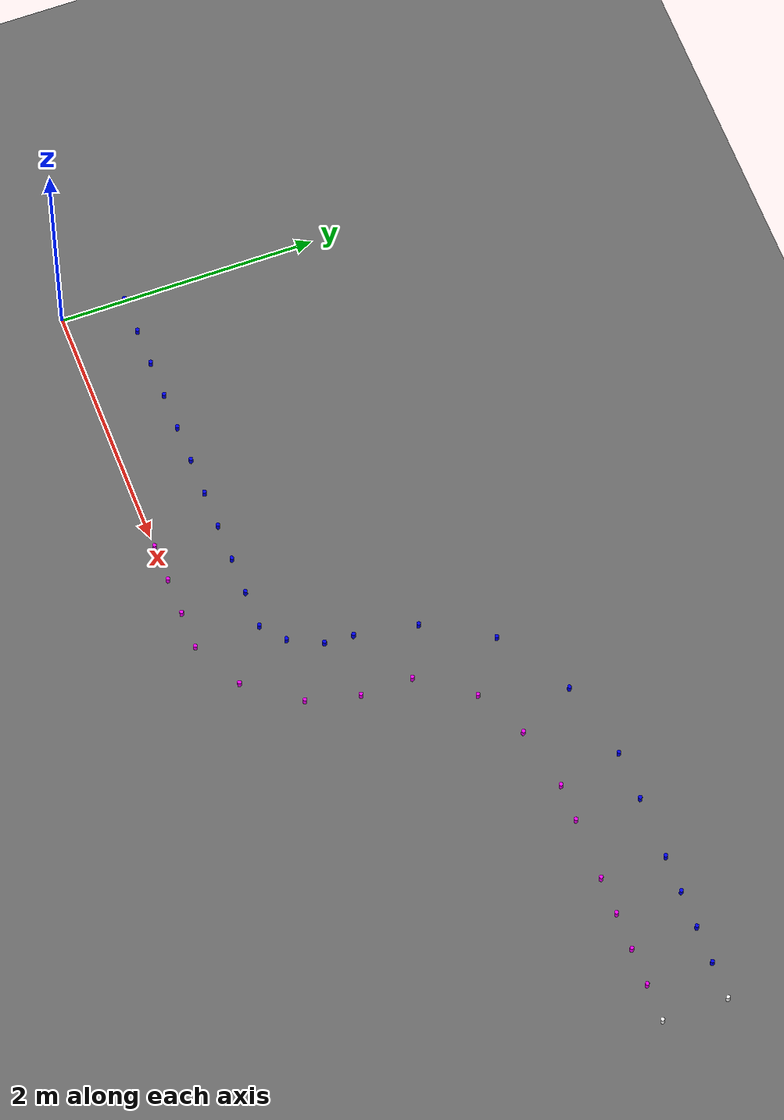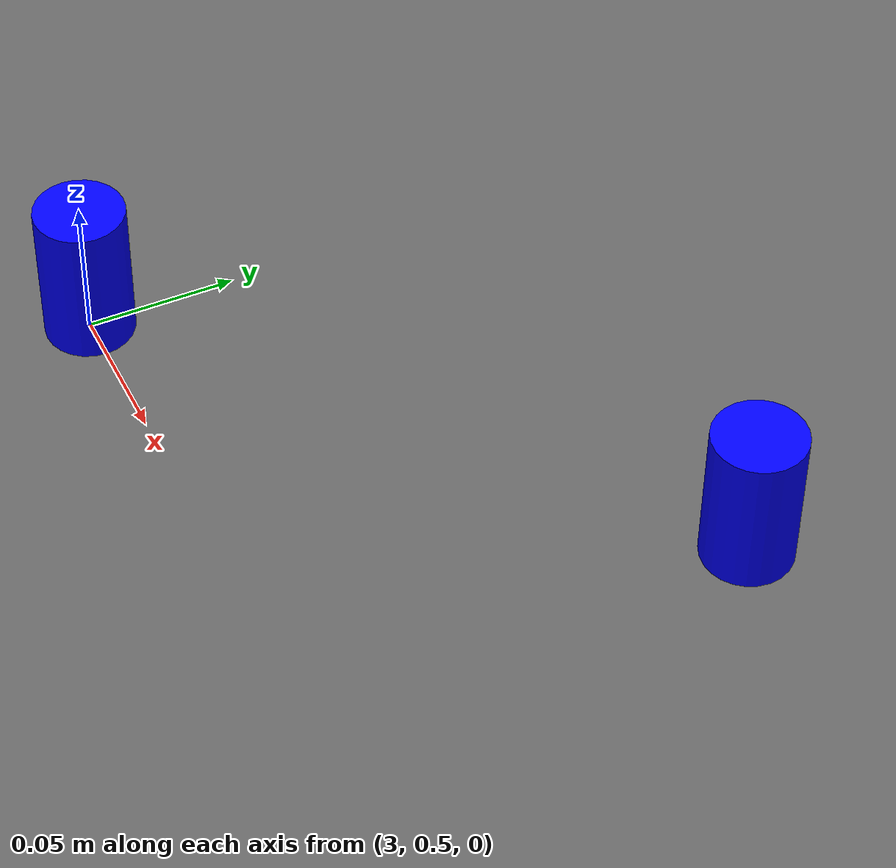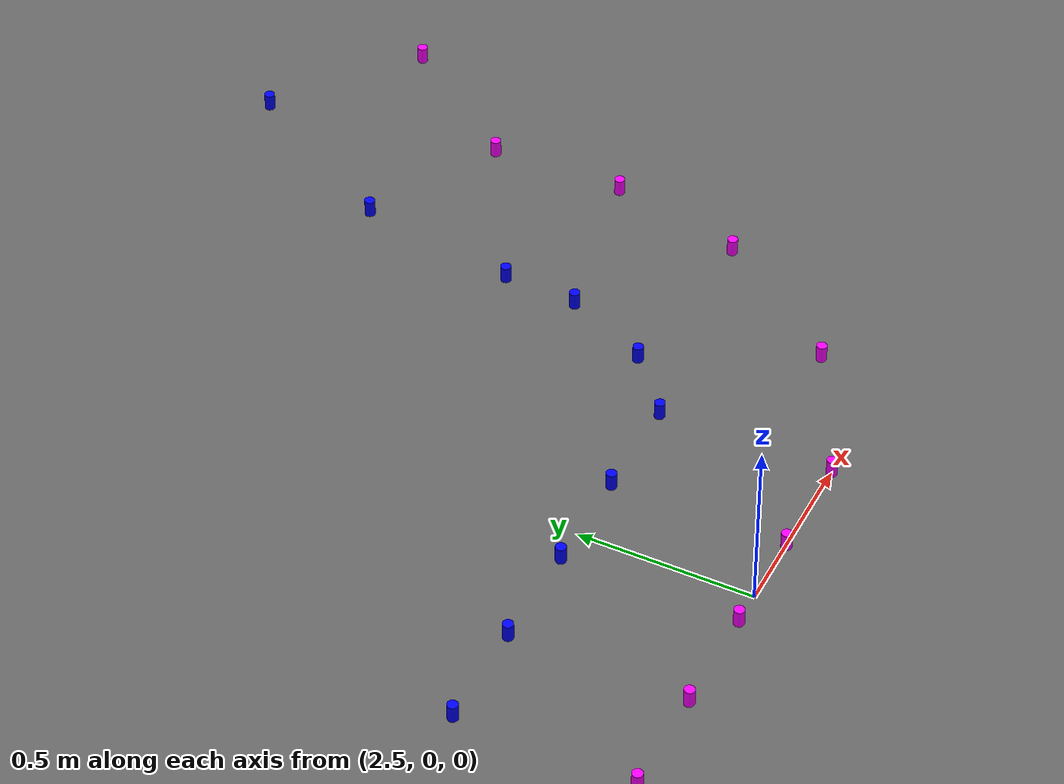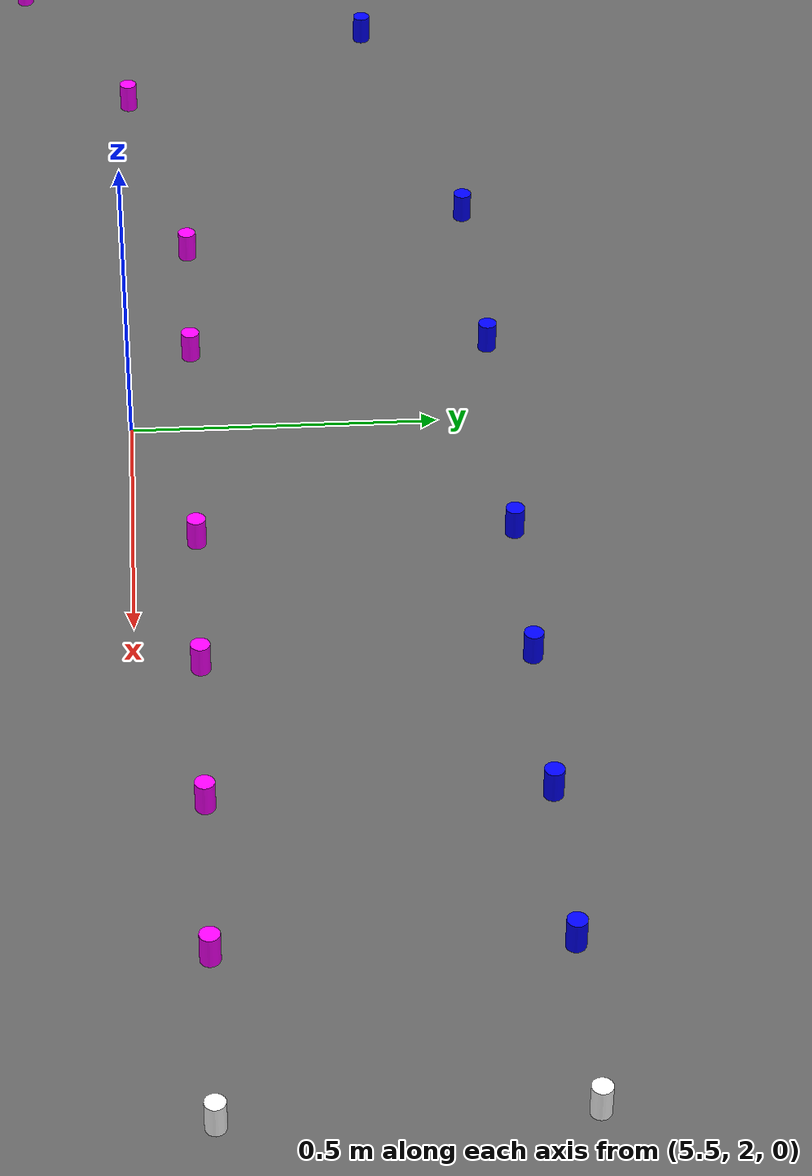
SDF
<sdf version='1.10'>
  <world name='empty'>
    <physics type='ode'>
      <max_step_size>0.0068</max_step_size>
      <real_time_factor>1.0</real_time_factor>
      <real_time_update_rate>10</real_time_update_rate>
    </physics>
    <plugin name='gz::sim::systems::Physics' filename='gz-sim-physics-system'/>
    <plugin name='gz::sim::systems::UserCommands' filename='gz-sim-user-commands-system'/>
    <plugin name='gz::sim::systems::SceneBroadcaster' filename='gz-sim-scene-broadcaster-system'/>
    <plugin name='gz::sim::systems::Contact' filename='gz-sim-contact-system'/>
    <gravity>0 0 -9.8000000000000007</gravity>
    <magnetic_field>5.5644999999999998e-06 2.2875799999999999e-05 -4.2388400000000002e-05</magnetic_field>
    <atmosphere type='adiabatic'/>
    <scene>
      <ambient>0.400000006 0.400000006 0.400000006 1</ambient>
      <background>0 0 0 1</background>
      <shadows>true</shadows>
        <fog>
          <type>linear</type>
          <color>0 0 0 1</color>
          <density>0.001</density>
          <start>10.0</start>
          <end>100.0</end>
        </fog>

    </scene>
    <model name='ground_plane'>
      <static>true</static>
      <link name='link'>
        <collision name='collision'>
          <geometry>
            <plane>
              <normal>0 0 1</normal>
              <size>100 100</size>
            </plane>
          </geometry>
          <surface>
            <friction>
              <ode>
                <mu>0.6</mu>  <!-- Static friction (resistance to starting motion) -->
                <mu2>0.6</mu2> <!-- Dynamic friction (resistance while sliding) -->
              </ode>
            </friction>
            <bounce/>
            <contact/>
          </surface>
        </collision>
        <visual name='visual'>
          <geometry>
            <plane>
              <normal>0 0 1</normal>
              <size>100 100</size>
            </plane>
          </geometry>
          <material>
            <ambient>0.4 0.40 0.0 1</ambient>
            <diffuse>0.4
             0.4 0.4   1</diffuse>
            <specular>1.20000001e-08 1.20000001e-08 1.20000001e-08 1</specular>
          </material>
        </visual>
        <pose>0 0 0 0 0 0</pose>
        <inertial>
          <pose>0 0 0 0 0 0</pose>
          <mass>1</mass>
          <inertia>
            <ixx>1</ixx>
            <ixy>0</ixy>
            <ixz>0</ixz>
            <iyy>1</iyy>
            <iyz>0</iyz>
            <izz>1</izz>
          </inertia>
        </inertial>
        <enable_wind>false</enable_wind>
      </link>
      <pose>0 0 0 0 0 0</pose>
      <self_collide>false</self_collide>
    </model>

        <model name="right_cone_0">
          <link name="link">
            <pose>0.0 0.5 0.025 0 0 0</pose>
            <collision name="collision">
              <geometry>
                <cylinder>
                  <radius>0.015</radius>
                  <length>0.05</length>
                </cylinder>
              </geometry>
            </collision>
            <visual name="visual">
              <geometry>
                <cylinder>
                  <radius>0.015</radius>
                  <length>0.05</length>
                </cylinder>
              </geometry>
              <material>
                <ambient>0 0 1 1</ambient>
                <diffuse>0 0 1 1</diffuse>
              </material>
            </visual>
          </link>
        </model>

        <model name="right_cone_1">
          <link name="link">
            <pose>0.3 0.5 0.025 0 0 0</pose>
            <collision name="collision">
              <geometry>
                <cylinder>
                  <radius>0.015</radius>
                  <length>0.05</length>
                </cylinder>
              </geometry>
            </collision>
            <visual name="visual">
              <geometry>
                <cylinder>
                  <radius>0.015</radius>
                  <length>0.05</length>
                </cylinder>
              </geometry>
              <material>
                <ambient>0 0 1 1</ambient>
                <diffuse>0 0 1 1</diffuse>
              </material>
            </visual>
          </link>
        </model>

        <model name="right_cone_2">
          <link name="link">
            <pose>0.6 0.5 0.025 0 0 0</pose>
            <collision name="collision">
              <geometry>
                <cylinder>
                  <radius>0.015</radius>
                  <length>0.05</length>
                </cylinder>
              </geometry>
            </collision>
            <visual name="visual">
              <geometry>
                <cylinder>
                  <radius>0.015</radius>
                  <length>0.05</length>
                </cylinder>
              </geometry>
              <material>
                <ambient>0 0 1 1</ambient>
                <diffuse>0 0 1 1</diffuse>
              </material>
            </visual>
          </link>
        </model>

        <model name="right_cone_3">
          <link name="link">
            <pose>0.8999999999999999 0.5 0.025 0 0 0</pose>
            <collision name="collision">
              <geometry>
                <cylinder>
                  <radius>0.015</radius>
                  <length>0.05</length>
                </cylinder>
              </geometry>
            </collision>
            <visual name="visual">
              <geometry>
                <cylinder>
                  <radius>0.015</radius>
                  <length>0.05</length>
                </cylinder>
              </geometry>
              <material>
                <ambient>0 0 1 1</ambient>
                <diffuse>0 0 1 1</diffuse>
              </material>
            </visual>
          </link>
        </model>

        <model name="right_cone_4">
          <link name="link">
            <pose>1.2 0.5 0.025 0 0 0</pose>
            <collision name="collision">
              <geometry>
                <cylinder>
                  <radius>0.015</radius>
                  <length>0.05</length>
                </cylinder>
              </geometry>
            </collision>
            <visual name="visual">
              <geometry>
                <cylinder>
                  <radius>0.015</radius>
                  <length>0.05</length>
                </cylinder>
              </geometry>
              <material>
                <ambient>0 0 1 1</ambient>
                <diffuse>0 0 1 1</diffuse>
              </material>
            </visual>
          </link>
        </model>

        <model name="right_cone_5">
          <link name="link">
            <pose>1.5 0.5 0.025 0 0 0</pose>
            <collision name="collision">
              <geometry>
                <cylinder>
                  <radius>0.015</radius>
                  <length>0.05</length>
                </cylinder>
              </geometry>
            </collision>
            <visual name="visual">
              <geometry>
                <cylinder>
                  <radius>0.015</radius>
                  <length>0.05</length>
                </cylinder>
              </geometry>
              <material>
                <ambient>0 0 1 1</ambient>
                <diffuse>0 0 1 1</diffuse>
              </material>
            </visual>
          </link>
        </model>

        <model name="right_cone_6">
          <link name="link">
            <pose>1.8 0.5 0.025 0 0 0</pose>
            <collision name="collision">
              <geometry>
                <cylinder>
                  <radius>0.015</radius>
                  <length>0.05</length>
                </cylinder>
              </geometry>
            </collision>
            <visual name="visual">
              <geometry>
                <cylinder>
                  <radius>0.015</radius>
                  <length>0.05</length>
                </cylinder>
              </geometry>
              <material>
                <ambient>0 0 1 1</ambient>
                <diffuse>0 0 1 1</diffuse>
              </material>
            </visual>
          </link>
        </model>

        <model name="right_cone_7">
          <link name="link">
            <pose>2.1 0.5 0.025 0 0 0</pose>
            <collision name="collision">
              <geometry>
                <cylinder>
                  <radius>0.015</radius>
                  <length>0.05</length>
                </cylinder>
              </geometry>
            </collision>
            <visual name="visual">
              <geometry>
                <cylinder>
                  <radius>0.015</radius>
                  <length>0.05</length>
                </cylinder>
              </geometry>
              <material>
                <ambient>0 0 1 1</ambient>
                <diffuse>0 0 1 1</diffuse>
              </material>
            </visual>
          </link>
        </model>

        <model name="right_cone_8">
          <link name="link">
            <pose>2.4 0.5 0.025 0 0 0</pose>
            <collision name="collision">
              <geometry>
                <cylinder>
                  <radius>0.015</radius>
                  <length>0.05</length>
                </cylinder>
              </geometry>
            </collision>
            <visual name="visual">
              <geometry>
                <cylinder>
                  <radius>0.015</radius>
                  <length>0.05</length>
                </cylinder>
              </geometry>
              <material>
                <ambient>0 0 1 1</ambient>
                <diffuse>0 0 1 1</diffuse>
              </material>
            </visual>
          </link>
        </model>

        <model name="right_cone_9">
          <link name="link">
            <pose>2.6999999999999997 0.5 0.025 0 0 0</pose>
            <collision name="collision">
              <geometry>
                <cylinder>
                  <radius>0.015</radius>
                  <length>0.05</length>
                </cylinder>
              </geometry>
            </collision>
            <visual name="visual">
              <geometry>
                <cylinder>
                  <radius>0.015</radius>
                  <length>0.05</length>
                </cylinder>
              </geometry>
              <material>
                <ambient>0 0 1 1</ambient>
                <diffuse>0 0 1 1</diffuse>
              </material>
            </visual>
          </link>
        </model>

        <model name="right_cone_10">
          <link name="link">
            <pose>2.9999999999999996 0.5 0.025 0 0 0</pose>
            <collision name="collision">
              <geometry>
                <cylinder>
                  <radius>0.015</radius>
                  <length>0.05</length>
                </cylinder>
              </geometry>
            </collision>
            <visual name="visual">
              <geometry>
                <cylinder>
                  <radius>0.015</radius>
                  <length>0.05</length>
                </cylinder>
              </geometry>
              <material>
                <ambient>0 0 1 1</ambient>
                <diffuse>0 0 1 1</diffuse>
              </material>
            </visual>
          </link>
        </model>

        <model name="right_cone_11">
          <link name="link">
            <pose>3.176393202250021 0.647213595499958 0.025 0 0 0</pose>
            <collision name="collision">
              <geometry>
                <cylinder>
                  <radius>0.015</radius>
                  <length>0.05</length>
                </cylinder>
              </geometry>
            </collision>
            <visual name="visual">
              <geometry>
                <cylinder>
                  <radius>0.015</radius>
                  <length>0.05</length>
                </cylinder>
              </geometry>
              <material>
                <ambient>0 0 1 1</ambient>
                <diffuse>0 0 1 1</diffuse>
              </material>
            </visual>
          </link>
        </model>

        <model name="right_cone_12">
          <link name="link">
            <pose>3.3000000000000003 0.9000000000000001 0.025 0 0 0</pose>
            <collision name="collision">
              <geometry>
                <cylinder>
                  <radius>0.015</radius>
                  <length>0.05</length>
                </cylinder>
              </geometry>
            </collision>
            <visual name="visual">
              <geometry>
                <cylinder>
                  <radius>0.015</radius>
                  <length>0.05</length>
                </cylinder>
              </geometry>
              <material>
                <ambient>0 0 1 1</ambient>
                <diffuse>0 0 1 1</diffuse>
              </material>
            </visual>
          </link>
        </model>

        <model name="right_cone_13">
          <link name="link">
            <pose>3.3149287499273337 1.121267812518166 0.025 0 0 0</pose>
            <collision name="collision">
              <geometry>
                <cylinder>
                  <radius>0.015</radius>
                  <length>0.05</length>
                </cylinder>
              </geometry>
            </collision>
            <visual name="visual">
              <geometry>
                <cylinder>
                  <radius>0.015</radius>
                  <length>0.05</length>
                </cylinder>
              </geometry>
              <material>
                <ambient>0 0 1 1</ambient>
                <diffuse>0 0 1 1</diffuse>
              </material>
            </visual>
          </link>
        </model>

        <model name="right_cone_14">
          <link name="link">
            <pose>3.4 1.6 0.025 0 0 0</pose>
            <collision name="collision">
              <geometry>
                <cylinder>
                  <radius>0.015</radius>
                  <length>0.05</length>
                </cylinder>
              </geometry>
            </collision>
            <visual name="visual">
              <geometry>
                <cylinder>
                  <radius>0.015</radius>
                  <length>0.05</length>
                </cylinder>
              </geometry>
              <material>
                <ambient>0 0 1 1</ambient>
                <diffuse>0 0 1 1</diffuse>
              </material>
            </visual>
          </link>
        </model>

        <model name="right_cone_15">
          <link name="link">
            <pose>3.6999999999999993 2.0999999999999996 0.025 0 0 0</pose>
            <collision name="collision">
              <geometry>
                <cylinder>
                  <radius>0.015</radius>
                  <length>0.05</length>
                </cylinder>
              </geometry>
            </collision>
            <visual name="visual">
              <geometry>
                <cylinder>
                  <radius>0.015</radius>
                  <length>0.05</length>
                </cylinder>
              </geometry>
              <material>
                <ambient>0 0 1 1</ambient>
                <diffuse>0 0 1 1</diffuse>
              </material>
            </visual>
          </link>
        </model>

        <model name="right_cone_16">
          <link name="link">
            <pose>4.276393202250021 2.447213595499958 0.025 0 0 0</pose>
            <collision name="collision">
              <geometry>
                <cylinder>
                  <radius>0.015</radius>
                  <length>0.05</length>
                </cylinder>
              </geometry>
            </collision>
            <visual name="visual">
              <geometry>
                <cylinder>
                  <radius>0.015</radius>
                  <length>0.05</length>
                </cylinder>
              </geometry>
              <material>
                <ambient>0 0 1 1</ambient>
                <diffuse>0 0 1 1</diffuse>
              </material>
            </visual>
          </link>
        </model>

        <model name="right_cone_17">
          <link name="link">
            <pose>4.9019419324309075 2.59029033784546 0.025 0 0 0</pose>
            <collision name="collision">
              <geometry>
                <cylinder>
                  <radius>0.015</radius>
                  <length>0.05</length>
                </cylinder>
              </geometry>
            </collision>
            <visual name="visual">
              <geometry>
                <cylinder>
                  <radius>0.015</radius>
                  <length>0.05</length>
                </cylinder>
              </geometry>
              <material>
                <ambient>0 0 1 1</ambient>
                <diffuse>0 0 1 1</diffuse>
              </material>
            </visual>
          </link>
        </model>

        <model name="right_cone_18">
          <link name="link">
            <pose>5.3 2.6 0.025 0 0 0</pose>
            <collision name="collision">
              <geometry>
                <cylinder>
                  <radius>0.015</radius>
                  <length>0.05</length>
                </cylinder>
              </geometry>
            </collision>
            <visual name="visual">
              <geometry>
                <cylinder>
                  <radius>0.015</radius>
                  <length>0.05</length>
                </cylinder>
              </geometry>
              <material>
                <ambient>0 0 1 1</ambient>
                <diffuse>0 0 1 1</diffuse>
              </material>
            </visual>
          </link>
        </model>

        <model name="right_cone_19">
          <link name="link">
            <pose>5.8 2.6 0.025 0 0 0</pose>
            <collision name="collision">
              <geometry>
                <cylinder>
                  <radius>0.015</radius>
                  <length>0.05</length>
                </cylinder>
              </geometry>
            </collision>
            <visual name="visual">
              <geometry>
                <cylinder>
                  <radius>0.015</radius>
                  <length>0.05</length>
                </cylinder>
              </geometry>
              <material>
                <ambient>0 0 1 1</ambient>
                <diffuse>0 0 1 1</diffuse>
              </material>
            </visual>
          </link>
        </model>

        <model name="right_cone_20">
          <link name="link">
            <pose>6.1 2.6 0.025 0 0 0</pose>
            <collision name="collision">
              <geometry>
                <cylinder>
                  <radius>0.015</radius>
                  <length>0.05</length>
                </cylinder>
              </geometry>
            </collision>
            <visual name="visual">
              <geometry>
                <cylinder>
                  <radius>0.015</radius>
                  <length>0.05</length>
                </cylinder>
              </geometry>
              <material>
                <ambient>0 0 1 1</ambient>
                <diffuse>0 0 1 1</diffuse>
              </material>
            </visual>
          </link>
        </model>

        <model name="right_cone_21">
          <link name="link">
            <pose>6.4 2.6 0.025 0 0 0</pose>
            <collision name="collision">
              <geometry>
                <cylinder>
                  <radius>0.015</radius>
                  <length>0.05</length>
                </cylinder>
              </geometry>
            </collision>
            <visual name="visual">
              <geometry>
                <cylinder>
                  <radius>0.015</radius>
                  <length>0.05</length>
                </cylinder>
              </geometry>
              <material>
                <ambient>0 0 1 1</ambient>
                <diffuse>0 0 1 1</diffuse>
              </material>
            </visual>
          </link>
        </model>

        <model name="right_cone_22">
          <link name="link">
            <pose>6.7 2.6 0.025 0 0 0</pose>
            <collision name="collision">
              <geometry>
                <cylinder>
                  <radius>0.015</radius>
                  <length>0.05</length>
                </cylinder>
              </geometry>
            </collision>
            <visual name="visual">
              <geometry>
                <cylinder>
                  <radius>0.015</radius>
                  <length>0.05</length>
                </cylinder>
              </geometry>
              <material>
                <ambient>0 0 1 1</ambient>
                <diffuse>0 0 1 1</diffuse>
              </material>
            </visual>
          </link>
        </model>

        <model name="right_cone_23">
          <link name="link">
            <pose>7.0 2.6 0.025 0 0 0</pose>
            <collision name="collision">
              <geometry>
                <cylinder>
                  <radius>0.015</radius>
                  <length>0.05</length>
                </cylinder>
              </geometry>
            </collision>
            <visual name="visual">
              <geometry>
                <cylinder>
                  <radius>0.015</radius>
                  <length>0.05</length>
                </cylinder>
              </geometry>
              <material>
                <ambient>1 1 1 1</ambient>
                <diffuse>1 1 1 1</diffuse>
              </material>
            </visual>
          </link>
        </model>

        <model name="left_cone_0">
          <link name="link">
            <pose>0 0 0.025 0 0 0</pose>
            <collision name="collision">
              <geometry>
                <cylinder>
                  <radius>0.015</radius>
                  <length>0.05</length>
                </cylinder>
              </geometry>
            </collision>
            <visual name="visual">
              <geometry>
                <cylinder>
                  <radius>0.015</radius>
                  <length>0.05</length>
                </cylinder>
              </geometry>
              <material>
                <ambient>1 0 1 1</ambient>
                <diffuse>1 0 1 1</diffuse>
              </material>
            </visual>
          </link>
        </model>

        <model name="left_cone_1">
          <link name="link">
            <pose>0.3 0 0.025 0 0 0</pose>
            <collision name="collision">
              <geometry>
                <cylinder>
                  <radius>0.015</radius>
                  <length>0.05</length>
                </cylinder>
              </geometry>
            </collision>
            <visual name="visual">
              <geometry>
                <cylinder>
                  <radius>0.015</radius>
                  <length>0.05</length>
                </cylinder>
              </geometry>
              <material>
                <ambient>1 0 1 1</ambient>
                <diffuse>1 0 1 1</diffuse>
              </material>
            </visual>
          </link>
        </model>

        <model name="left_cone_2">
          <link name="link">
            <pose>0.6 0 0.025 0 0 0</pose>
            <collision name="collision">
              <geometry>
                <cylinder>
                  <radius>0.015</radius>
                  <length>0.05</length>
                </cylinder>
              </geometry>
            </collision>
            <visual name="visual">
              <geometry>
                <cylinder>
                  <radius>0.015</radius>
                  <length>0.05</length>
                </cylinder>
              </geometry>
              <material>
                <ambient>1 0 1 1</ambient>
                <diffuse>1 0 1 1</diffuse>
              </material>
            </visual>
          </link>
        </model>

        <model name="left_cone_3">
          <link name="link">
            <pose>0.8999999999999999 0 0.025 0 0 0</pose>
            <collision name="collision">
              <geometry>
                <cylinder>
                  <radius>0.015</radius>
                  <length>0.05</length>
                </cylinder>
              </geometry>
            </collision>
            <visual name="visual">
              <geometry>
                <cylinder>
                  <radius>0.015</radius>
                  <length>0.05</length>
                </cylinder>
              </geometry>
              <material>
                <ambient>1 0 1 1</ambient>
                <diffuse>1 0 1 1</diffuse>
              </material>
            </visual>
          </link>
        </model>

        <model name="left_cone_4">
          <link name="link">
            <pose>1.2 0 0.025 0 0 0</pose>
            <collision name="collision">
              <geometry>
                <cylinder>
                  <radius>0.015</radius>
                  <length>0.05</length>
                </cylinder>
              </geometry>
            </collision>
            <visual name="visual">
              <geometry>
                <cylinder>
                  <radius>0.015</radius>
                  <length>0.05</length>
                </cylinder>
              </geometry>
              <material>
                <ambient>1 0 1 1</ambient>
                <diffuse>1 0 1 1</diffuse>
              </material>
            </visual>
          </link>
        </model>

        <model name="left_cone_5">
          <link name="link">
            <pose>1.5 0 0.025 0 0 0</pose>
            <collision name="collision">
              <geometry>
                <cylinder>
                  <radius>0.015</radius>
                  <length>0.05</length>
                </cylinder>
              </geometry>
            </collision>
            <visual name="visual">
              <geometry>
                <cylinder>
                  <radius>0.015</radius>
                  <length>0.05</length>
                </cylinder>
              </geometry>
              <material>
                <ambient>1 0 1 1</ambient>
                <diffuse>1 0 1 1</diffuse>
              </material>
            </visual>
          </link>
        </model>

        <model name="left_cone_6">
          <link name="link">
            <pose>1.8 0 0.025 0 0 0</pose>
            <collision name="collision">
              <geometry>
                <cylinder>
                  <radius>0.015</radius>
                  <length>0.05</length>
                </cylinder>
              </geometry>
            </collision>
            <visual name="visual">
              <geometry>
                <cylinder>
                  <radius>0.015</radius>
                  <length>0.05</length>
                </cylinder>
              </geometry>
              <material>
                <ambient>1 0 1 1</ambient>
                <diffuse>1 0 1 1</diffuse>
              </material>
            </visual>
          </link>
        </model>

        <model name="left_cone_7">
          <link name="link">
            <pose>2.1 0 0.025 0 0 0</pose>
            <collision name="collision">
              <geometry>
                <cylinder>
                  <radius>0.015</radius>
                  <length>0.05</length>
                </cylinder>
              </geometry>
            </collision>
            <visual name="visual">
              <geometry>
                <cylinder>
                  <radius>0.015</radius>
                  <length>0.05</length>
                </cylinder>
              </geometry>
              <material>
                <ambient>1 0 1 1</ambient>
                <diffuse>1 0 1 1</diffuse>
              </material>
            </visual>
          </link>
        </model>

        <model name="left_cone_8">
          <link name="link">
            <pose>2.4 0 0.025 0 0 0</pose>
            <collision name="collision">
              <geometry>
                <cylinder>
                  <radius>0.015</radius>
                  <length>0.05</length>
                </cylinder>
              </geometry>
            </collision>
            <visual name="visual">
              <geometry>
                <cylinder>
                  <radius>0.015</radius>
                  <length>0.05</length>
                </cylinder>
              </geometry>
              <material>
                <ambient>1 0 1 1</ambient>
                <diffuse>1 0 1 1</diffuse>
              </material>
            </visual>
          </link>
        </model>

        <model name="left_cone_9">
          <link name="link">
            <pose>2.6999999999999997 0 0.025 0 0 0</pose>
            <collision name="collision">
              <geometry>
                <cylinder>
                  <radius>0.015</radius>
                  <length>0.05</length>
                </cylinder>
              </geometry>
            </collision>
            <visual name="visual">
              <geometry>
                <cylinder>
                  <radius>0.015</radius>
                  <length>0.05</length>
                </cylinder>
              </geometry>
              <material>
                <ambient>1 0 1 1</ambient>
                <diffuse>1 0 1 1</diffuse>
              </material>
            </visual>
          </link>
        </model>

        <model name="left_cone_10">
          <link name="link">
            <pose>2.9999999999999996 0 0.025 0 0 0</pose>
            <collision name="collision">
              <geometry>
                <cylinder>
                  <radius>0.015</radius>
                  <length>0.05</length>
                </cylinder>
              </geometry>
            </collision>
            <visual name="visual">
              <geometry>
                <cylinder>
                  <radius>0.015</radius>
                  <length>0.05</length>
                </cylinder>
              </geometry>
              <material>
                <ambient>1 0 1 1</ambient>
                <diffuse>1 0 1 1</diffuse>
              </material>
            </visual>
          </link>
        </model>

        <model name="left_cone_11">
          <link name="link">
            <pose>3.4 0.2 0.025 0 0 0</pose>
            <collision name="collision">
              <geometry>
                <cylinder>
                  <radius>0.015</radius>
                  <length>0.05</length>
                </cylinder>
              </geometry>
            </collision>
            <visual name="visual">
              <geometry>
                <cylinder>
                  <radius>0.015</radius>
                  <length>0.05</length>
                </cylinder>
              </geometry>
              <material>
                <ambient>1 0 1 1</ambient>
                <diffuse>1 0 1 1</diffuse>
              </material>
            </visual>
          </link>
        </model>

        <model name="left_cone_12">
          <link name="link">
            <pose>3.7 0.6 0.025 0 0 0</pose>
            <collision name="collision">
              <geometry>
                <cylinder>
                  <radius>0.015</radius>
                  <length>0.05</length>
                </cylinder>
              </geometry>
            </collision>
            <visual name="visual">
              <geometry>
                <cylinder>
                  <radius>0.015</radius>
                  <length>0.05</length>
                </cylinder>
              </geometry>
              <material>
                <ambient>1 0 1 1</ambient>
                <diffuse>1 0 1 1</diffuse>
              </material>
            </visual>
          </link>
        </model>

        <model name="left_cone_13">
          <link name="link">
            <pose>3.8 1.0 0.025 0 0 0</pose>
            <collision name="collision">
              <geometry>
                <cylinder>
                  <radius>0.015</radius>
                  <length>0.05</length>
                </cylinder>
              </geometry>
            </collision>
            <visual name="visual">
              <geometry>
                <cylinder>
                  <radius>0.015</radius>
                  <length>0.05</length>
                </cylinder>
              </geometry>
              <material>
                <ambient>1 0 1 1</ambient>
                <diffuse>1 0 1 1</diffuse>
              </material>
            </visual>
          </link>
        </model>

        <model name="left_cone_14">
          <link name="link">
            <pose>3.8 1.4 0.025 0 0 0</pose>
            <collision name="collision">
              <geometry>
                <cylinder>
                  <radius>0.015</radius>
                  <length>0.05</length>
                </cylinder>
              </geometry>
            </collision>
            <visual name="visual">
              <geometry>
                <cylinder>
                  <radius>0.015</radius>
                  <length>0.05</length>
                </cylinder>
              </geometry>
              <material>
                <ambient>1 0 1 1</ambient>
                <diffuse>1 0 1 1</diffuse>
              </material>
            </visual>
          </link>
        </model>

        <model name="left_cone_15">
          <link name="link">
            <pose>4.1 1.8 0.025 0 0 0</pose>
            <collision name="collision">
              <geometry>
                <cylinder>
                  <radius>0.015</radius>
                  <length>0.05</length>
                </cylinder>
              </geometry>
            </collision>
            <visual name="visual">
              <geometry>
                <cylinder>
                  <radius>0.015</radius>
                  <length>0.05</length>
                </cylinder>
              </geometry>
              <material>
                <ambient>1 0 1 1</ambient>
                <diffuse>1 0 1 1</diffuse>
              </material>
            </visual>
          </link>
        </model>

        <model name="left_cone_16">
          <link name="link">
            <pose>4.5 2.0 0.025 0 0 0</pose>
            <collision name="collision">
              <geometry>
                <cylinder>
                  <radius>0.015</radius>
                  <length>0.05</length>
                </cylinder>
              </geometry>
            </collision>
            <visual name="visual">
              <geometry>
                <cylinder>
                  <radius>0.015</radius>
                  <length>0.05</length>
                </cylinder>
              </geometry>
              <material>
                <ambient>1 0 1 1</ambient>
                <diffuse>1 0 1 1</diffuse>
              </material>
            </visual>
          </link>
        </model>

        <model name="left_cone_17">
          <link name="link">
            <pose>5.0 2.1 0.025 0 0 0</pose>
            <collision name="collision">
              <geometry>
                <cylinder>
                  <radius>0.015</radius>
                  <length>0.05</length>
                </cylinder>
              </geometry>
            </collision>
            <visual name="visual">
              <geometry>
                <cylinder>
                  <radius>0.015</radius>
                  <length>0.05</length>
                </cylinder>
              </geometry>
              <material>
                <ambient>1 0 1 1</ambient>
                <diffuse>1 0 1 1</diffuse>
              </material>
            </visual>
          </link>
        </model>

        <model name="left_cone_18">
          <link name="link">
            <pose>5.3 2.1 0.025 0 0 0</pose>
            <collision name="collision">
              <geometry>
                <cylinder>
                  <radius>0.015</radius>
                  <length>0.05</length>
                </cylinder>
              </geometry>
            </collision>
            <visual name="visual">
              <geometry>
                <cylinder>
                  <radius>0.015</radius>
                  <length>0.05</length>
                </cylinder>
              </geometry>
              <material>
                <ambient>1 0 1 1</ambient>
                <diffuse>1 0 1 1</diffuse>
              </material>
            </visual>
          </link>
        </model>

        <model name="left_cone_19">
          <link name="link">
            <pose>5.8 2.1 0.025 0 0 0</pose>
            <collision name="collision">
              <geometry>
                <cylinder>
                  <radius>0.015</radius>
                  <length>0.05</length>
                </cylinder>
              </geometry>
            </collision>
            <visual name="visual">
              <geometry>
                <cylinder>
                  <radius>0.015</radius>
                  <length>0.05</length>
                </cylinder>
              </geometry>
              <material>
                <ambient>1 0 1 1</ambient>
                <diffuse>1 0 1 1</diffuse>
              </material>
            </visual>
          </link>
        </model>

        <model name="left_cone_20">
          <link name="link">
            <pose>6.1 2.1 0.025 0 0 0</pose>
            <collision name="collision">
              <geometry>
                <cylinder>
                  <radius>0.015</radius>
                  <length>0.05</length>
                </cylinder>
              </geometry>
            </collision>
            <visual name="visual">
              <geometry>
                <cylinder>
                  <radius>0.015</radius>
                  <length>0.05</length>
                </cylinder>
              </geometry>
              <material>
                <ambient>1 0 1 1</ambient>
                <diffuse>1 0 1 1</diffuse>
              </material>
            </visual>
          </link>
        </model>

        <model name="left_cone_21">
          <link name="link">
            <pose>6.4 2.1 0.025 0 0 0</pose>
            <collision name="collision">
              <geometry>
                <cylinder>
                  <radius>0.015</radius>
                  <length>0.05</length>
                </cylinder>
              </geometry>
            </collision>
            <visual name="visual">
              <geometry>
                <cylinder>
                  <radius>0.015</radius>
                  <length>0.05</length>
                </cylinder>
              </geometry>
              <material>
                <ambient>1 0 1 1</ambient>
                <diffuse>1 0 1 1</diffuse>
              </material>
            </visual>
          </link>
        </model>

        <model name="left_cone_22">
          <link name="link">
            <pose>6.7 2.1 0.025 0 0 0</pose>
            <collision name="collision">
              <geometry>
                <cylinder>
                  <radius>0.015</radius>
                  <length>0.05</length>
                </cylinder>
              </geometry>
            </collision>
            <visual name="visual">
              <geometry>
                <cylinder>
                  <radius>0.015</radius>
                  <length>0.05</length>
                </cylinder>
              </geometry>
              <material>
                <ambient>1 0 1 1</ambient>
                <diffuse>1 0 1 1</diffuse>
              </material>
            </visual>
          </link>
        </model>

        <model name="left_cone_23">
          <link name="link">
            <pose>7.0 2.1 0.025 0 0 0</pose>
            <collision name="collision">
              <geometry>
                <cylinder>
                  <radius>0.015</radius>
                  <length>0.05</length>
                </cylinder>
              </geometry>
            </collision>
            <visual name="visual">
              <geometry>
                <cylinder>
                  <radius>0.015</radius>
                  <length>0.05</length>
                </cylinder>
              </geometry>
              <material>
                <ambient>1 1 1 1</ambient>
                <diffuse>1 1 1 1</diffuse>
              </material>
            </visual>
          </link>
        </model>

    <light name='sun' type='directional'>
      <pose>0 0 10 0 0 0</pose>
      <cast_shadows>true</cast_shadows>
      <intensity>1</intensity>
      <direction>-0.5 0.10000000000000001 -0.90000000000000002</direction>
      <diffuse>0.800000012 0.800000012 0.800000012 1</diffuse>
      <specular>0.200000003 0.200000003 0.200000003 1</specular>
      <attenuation>
        <range>1000</range>
        <linear>0.01</linear>
        <constant>0.90000000000000002</constant>
        <quadratic>0.001</quadratic>
      </attenuation>
      <spot>
        <inner_angle>0</inner_angle>
        <outer_angle>0</outer_angle>
        <falloff>0</falloff>
      </spot>
    </light>
  </world>
</sdf>
